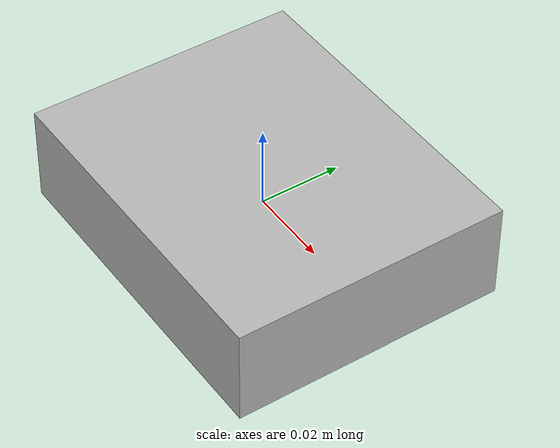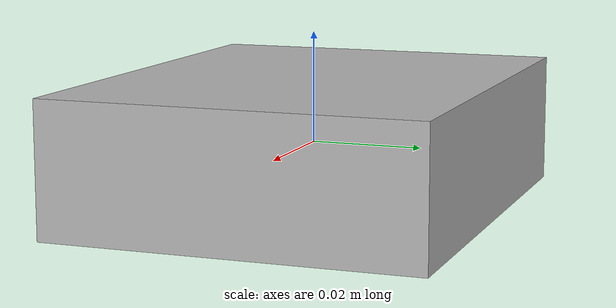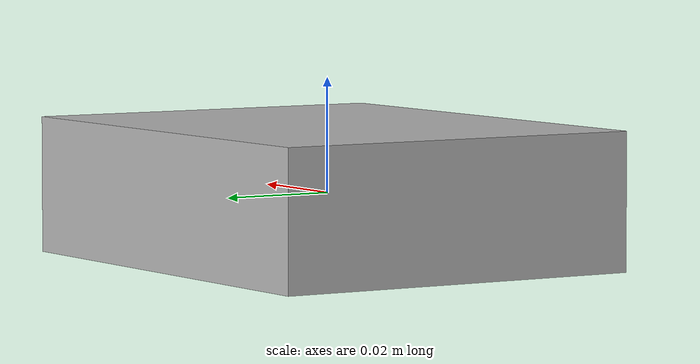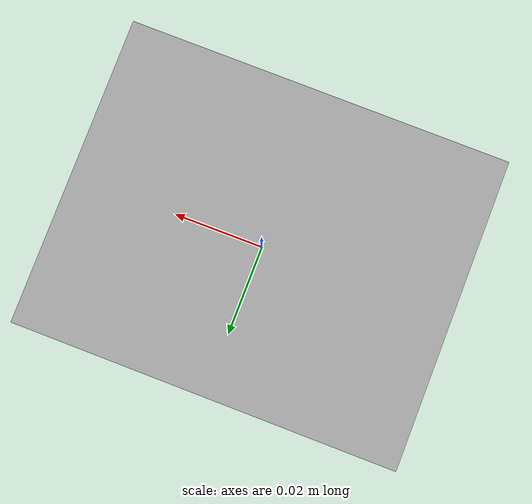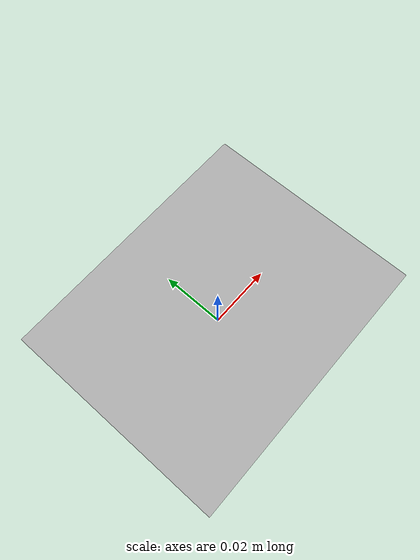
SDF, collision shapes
<?xml version="1.0"?>
<sdf version="1.7">
  <model name="009_gelatin_box">
    <link name="base_link_gelatin">
      <inertial>
        <mass>0.097000</mass>
        <inertia>
          <ixx>0.000050</ixx>
          <ixy>0</ixy>
          <ixz>0</ixz>
          <iyy>0.000072</iyy>
          <iyz>0</iyz>
          <izz>0.000108</izz>
        </inertia>
      </inertial>
      <visual name="base_link_gelatin">
        <pose>-0.0029 0.024 -0.015 -0.0085 -0.002 1.34</pose>
        <geometry>
          <mesh>
            <uri>package://drake/manipulation/models/ycb/meshes/009_gelatin_box_textured.obj</uri>
          </mesh>
        </geometry>
      </visual>
      <collision name="box_collision">
        <geometry>
          <box>
            <size>0.083200 0.067100 0.024000</size>
          </box>
        </geometry>
        <material>
          <diffuse>0 1 0 1.0</diffuse>
        </material>
      </collision>
      <collision name="point_collision1">
        <pose>0.042100 0.034050 0.012500 0 0 0 </pose>
        <geometry>
          <sphere>
            <radius>1e-7</radius>
          </sphere>
        </geometry>
      </collision>
      <collision name="point_collision2">
        <pose>0.042100 -0.034050 0.012500 0 0 0 </pose>
        <geometry>
          <sphere>
            <radius>1e-7</radius>
          </sphere>
        </geometry>
      </collision>
      <collision name="point_collision3">
        <pose>-0.042100 0.034050 0.012500 0 0 0 </pose>
        <geometry>
          <sphere>
            <radius>1e-7</radius>
          </sphere>
        </geometry>
      </collision>
      <collision name="point_collision4">
        <pose>-0.042100 -0.034050 0.012500 0 0 0 </pose>
        <geometry>
          <sphere>
            <radius>1e-7</radius>
          </sphere>
        </geometry>
      </collision>
      <collision name="point_collision5">
        <pose>0.042100 0.034050 -0.012500 0 0 0 </pose>
        <geometry>
          <sphere>
            <radius>1e-7</radius>
          </sphere>
        </geometry>
      </collision>
      <collision name="point_collision6">
        <pose>0.042100 -0.034050 -0.012500 0 0 0 </pose>
        <geometry>
          <sphere>
            <radius>1e-7</radius>
          </sphere>
        </geometry>
      </collision>
      <collision name="point_collision7">
        <pose>-0.042100 0.034050 -0.012500 0 0 0 </pose>
        <geometry>
          <sphere>
            <radius>1e-7</radius>
          </sphere>
        </geometry>
      </collision>
      <collision name="point_collision8">
        <pose>-0.042100 -0.034050 -0.012500 0 0 0 </pose>
        <geometry>
          <sphere>
            <radius>1e-7</radius>
          </sphere>
        </geometry>
      </collision>
    </link>
  </model>
</sdf>
